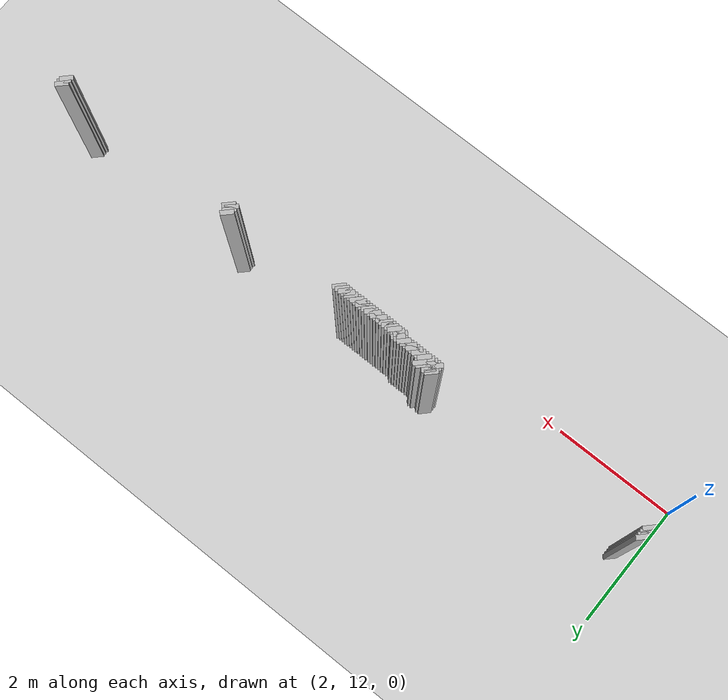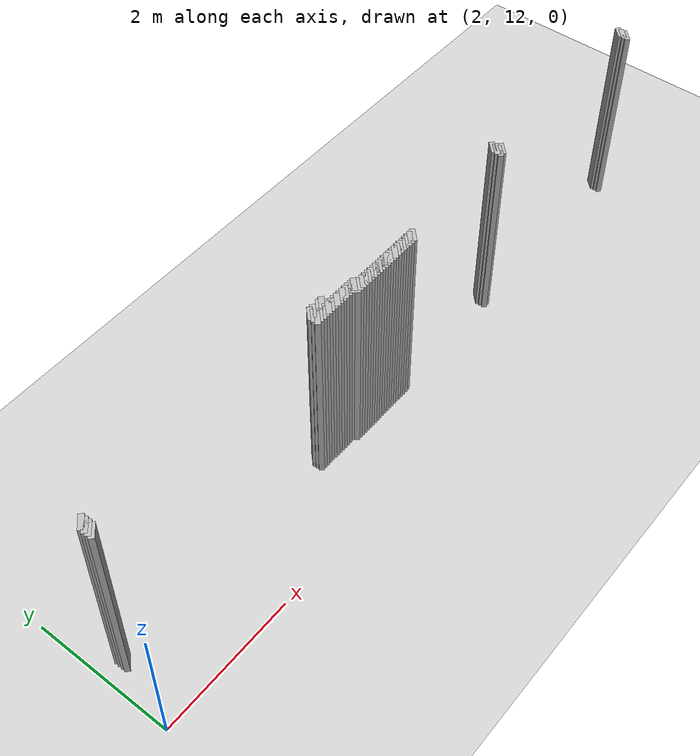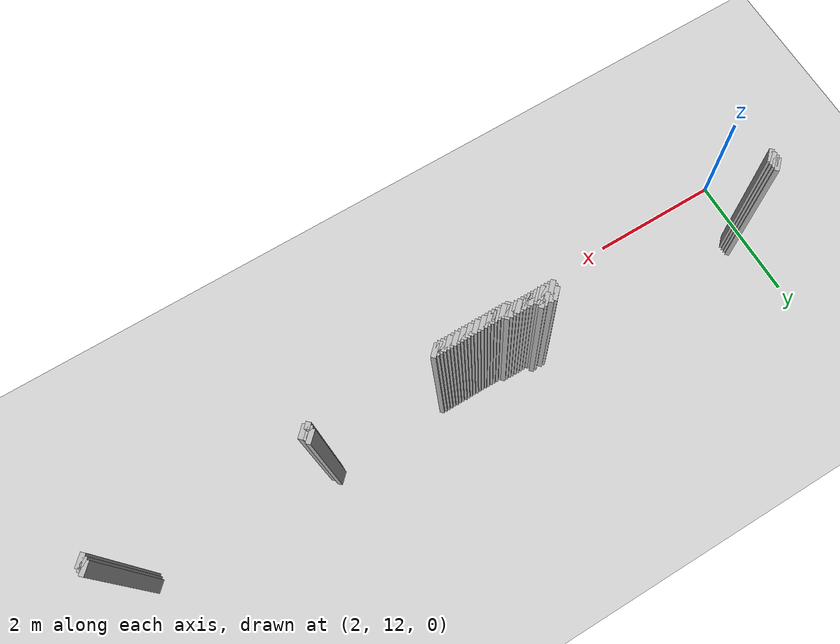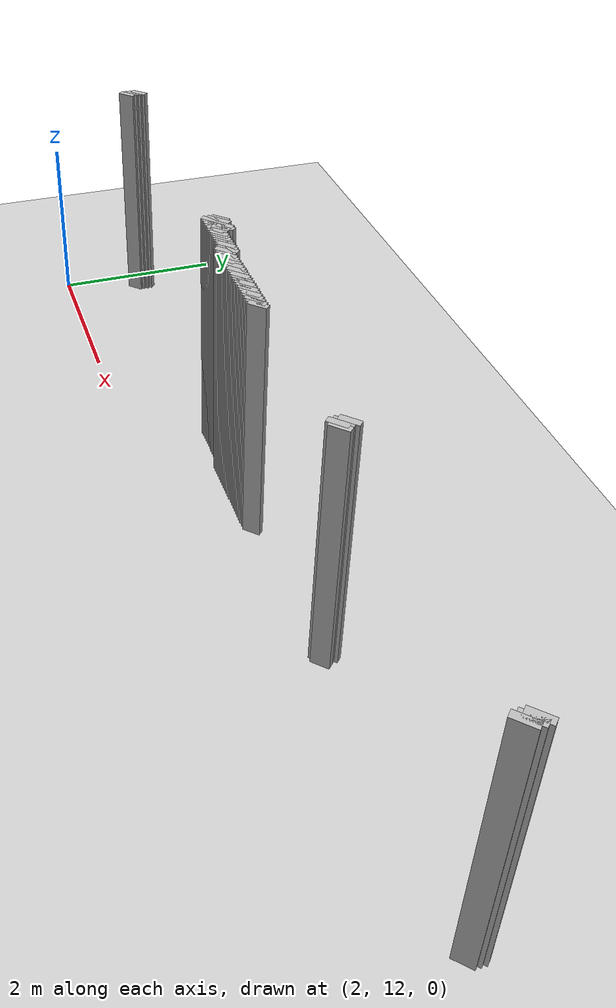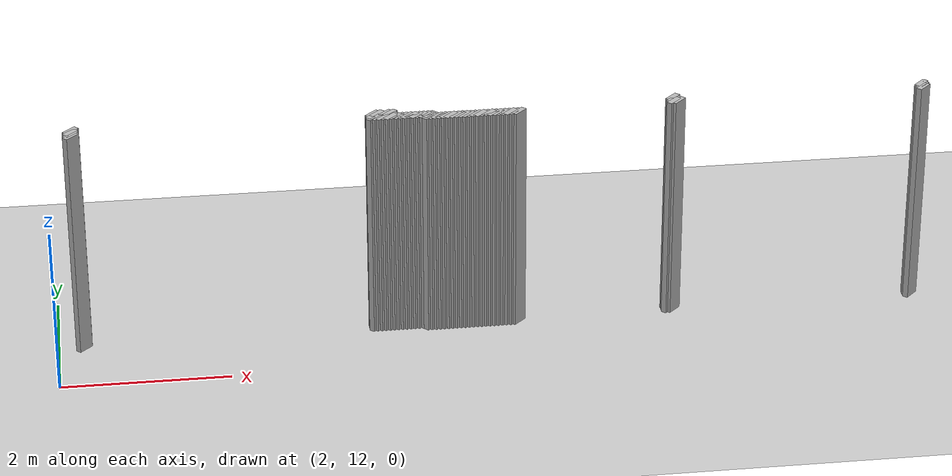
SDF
<sdf version="1.5">
 <world name="default">
  <include><uri>model://ground_plane</uri></include>
  <include><uri>model://sun</uri></include>
  <model name="grey_wall_847">
   <static>1</static>
   <link name="link">
    <pose>2.3000000000000003 13.05  1.4 0 0 -0.7853981633974572</pose>
    <collision name="collision">
     <geometry><box><size>0.07071067811865513 .2  2.8</size></box></geometry>
    </collision>
    <visual name="visual">
     <cast_shadows>0</cast_shadows>
     <geometry><box><size>0.07071067811865513 .2  2.8</size></box></geometry>
    </visual>
   </link>
  </model>
  <model name="grey_wall_848">
   <static>1</static>
   <link name="link">
    <pose>5.800000000000001 13.05  1.4 0 0 -0.7853981633974483</pose>
    <collision name="collision">
     <geometry><box><size>0.07071067811865576 .2  2.8</size></box></geometry>
    </collision>
    <visual name="visual">
     <cast_shadows>0</cast_shadows>
     <geometry><box><size>0.07071067811865576 .2  2.8</size></box></geometry>
    </visual>
   </link>
  </model>
  <model name="grey_wall_849">
   <static>1</static>
   <link name="link">
    <pose>5.8500000000000005 13.05  1.4 0 0 -0.7853981633974483</pose>
    <collision name="collision">
     <geometry><box><size>0.07071067811865576 .2  2.8</size></box></geometry>
    </collision>
    <visual name="visual">
     <cast_shadows>0</cast_shadows>
     <geometry><box><size>0.07071067811865576 .2  2.8</size></box></geometry>
    </visual>
   </link>
  </model>
  <model name="grey_wall_850">
   <static>1</static>
   <link name="link">
    <pose>5.95 13.05  1.4 0 0 -0.7853981633974483</pose>
    <collision name="collision">
     <geometry><box><size>0.07071067811865576 .2  2.8</size></box></geometry>
    </collision>
    <visual name="visual">
     <cast_shadows>0</cast_shadows>
     <geometry><box><size>0.07071067811865576 .2  2.8</size></box></geometry>
    </visual>
   </link>
  </model>
  <model name="grey_wall_851">
   <static>1</static>
   <link name="link">
    <pose>6.0 13.05  1.4 0 0 -0.7853981633974483</pose>
    <collision name="collision">
     <geometry><box><size>0.07071067811865576 .2  2.8</size></box></geometry>
    </collision>
    <visual name="visual">
     <cast_shadows>0</cast_shadows>
     <geometry><box><size>0.07071067811865576 .2  2.8</size></box></geometry>
    </visual>
   </link>
  </model>
  <model name="grey_wall_852">
   <static>1</static>
   <link name="link">
    <pose>9.35 13.05  1.4 0 0 -0.7853981633974483</pose>
    <collision name="collision">
     <geometry><box><size>0.07071067811865576 .2  2.8</size></box></geometry>
    </collision>
    <visual name="visual">
     <cast_shadows>0</cast_shadows>
     <geometry><box><size>0.07071067811865576 .2  2.8</size></box></geometry>
    </visual>
   </link>
  </model>
  <model name="grey_wall_853">
   <static>1</static>
   <link name="link">
    <pose>12.350000000000001 13.05  1.4 0 0 -0.7853981633974483</pose>
    <collision name="collision">
     <geometry><box><size>0.07071067811865576 .2  2.8</size></box></geometry>
    </collision>
    <visual name="visual">
     <cast_shadows>0</cast_shadows>
     <geometry><box><size>0.07071067811865576 .2  2.8</size></box></geometry>
    </visual>
   </link>
  </model>
  <model name="grey_wall_854">
   <static>1</static>
   <link name="link">
    <pose>2.3000000000000003 13.0  1.4 0 0 -0.7853981633974572</pose>
    <collision name="collision">
     <geometry><box><size>0.07071067811865513 .2  2.8</size></box></geometry>
    </collision>
    <visual name="visual">
     <cast_shadows>0</cast_shadows>
     <geometry><box><size>0.07071067811865513 .2  2.8</size></box></geometry>
    </visual>
   </link>
  </model>
  <model name="grey_wall_855">
   <static>1</static>
   <link name="link">
    <pose>5.800000000000001 13.0  1.4 0 0 -0.7853981633974483</pose>
    <collision name="collision">
     <geometry><box><size>0.07071067811865576 .2  2.8</size></box></geometry>
    </collision>
    <visual name="visual">
     <cast_shadows>0</cast_shadows>
     <geometry><box><size>0.07071067811865576 .2  2.8</size></box></geometry>
    </visual>
   </link>
  </model>
  <model name="grey_wall_856">
   <static>1</static>
   <link name="link">
    <pose>6.0 13.0  1.4 0 0 -0.7853981633974483</pose>
    <collision name="collision">
     <geometry><box><size>0.07071067811865576 .2  2.8</size></box></geometry>
    </collision>
    <visual name="visual">
     <cast_shadows>0</cast_shadows>
     <geometry><box><size>0.07071067811865576 .2  2.8</size></box></geometry>
    </visual>
   </link>
  </model>
  <model name="grey_wall_857">
   <static>1</static>
   <link name="link">
    <pose>9.35 13.0  1.4 0 0 -0.7853981633974483</pose>
    <collision name="collision">
     <geometry><box><size>0.07071067811865576 .2  2.8</size></box></geometry>
    </collision>
    <visual name="visual">
     <cast_shadows>0</cast_shadows>
     <geometry><box><size>0.07071067811865576 .2  2.8</size></box></geometry>
    </visual>
   </link>
  </model>
  <model name="grey_wall_858">
   <static>1</static>
   <link name="link">
    <pose>12.350000000000001 13.0  1.4 0 0 -0.7853981633974483</pose>
    <collision name="collision">
     <geometry><box><size>0.07071067811865576 .2  2.8</size></box></geometry>
    </collision>
    <visual name="visual">
     <cast_shadows>0</cast_shadows>
     <geometry><box><size>0.07071067811865576 .2  2.8</size></box></geometry>
    </visual>
   </link>
  </model>
  <model name="grey_wall_859">
   <static>1</static>
   <link name="link">
    <pose>2.3000000000000003 12.950000000000001  1.4 0 0 -0.7853981633974572</pose>
    <collision name="collision">
     <geometry><box><size>0.07071067811865513 .2  2.8</size></box></geometry>
    </collision>
    <visual name="visual">
     <cast_shadows>0</cast_shadows>
     <geometry><box><size>0.07071067811865513 .2  2.8</size></box></geometry>
    </visual>
   </link>
  </model>
  <model name="grey_wall_860">
   <static>1</static>
   <link name="link">
    <pose>5.800000000000001 12.950000000000001  1.4 0 0 -0.7853981633974483</pose>
    <collision name="collision">
     <geometry><box><size>0.07071067811865576 .2  2.8</size></box></geometry>
    </collision>
    <visual name="visual">
     <cast_shadows>0</cast_shadows>
     <geometry><box><size>0.07071067811865576 .2  2.8</size></box></geometry>
    </visual>
   </link>
  </model>
  <model name="grey_wall_861">
   <static>1</static>
   <link name="link">
    <pose>5.8500000000000005 12.950000000000001  1.4 0 0 -0.7853981633974483</pose>
    <collision name="collision">
     <geometry><box><size>0.07071067811865576 .2  2.8</size></box></geometry>
    </collision>
    <visual name="visual">
     <cast_shadows>0</cast_shadows>
     <geometry><box><size>0.07071067811865576 .2  2.8</size></box></geometry>
    </visual>
   </link>
  </model>
  <model name="grey_wall_862">
   <static>1</static>
   <link name="link">
    <pose>5.9 12.950000000000001  1.4 0 0 -0.7853981633974483</pose>
    <collision name="collision">
     <geometry><box><size>0.07071067811865576 .2  2.8</size></box></geometry>
    </collision>
    <visual name="visual">
     <cast_shadows>0</cast_shadows>
     <geometry><box><size>0.07071067811865576 .2  2.8</size></box></geometry>
    </visual>
   </link>
  </model>
  <model name="grey_wall_863">
   <static>1</static>
   <link name="link">
    <pose>5.95 12.950000000000001  1.4 0 0 -0.7853981633974483</pose>
    <collision name="collision">
     <geometry><box><size>0.07071067811865576 .2  2.8</size></box></geometry>
    </collision>
    <visual name="visual">
     <cast_shadows>0</cast_shadows>
     <geometry><box><size>0.07071067811865576 .2  2.8</size></box></geometry>
    </visual>
   </link>
  </model>
  <model name="grey_wall_864">
   <static>1</static>
   <link name="link">
    <pose>6.0 12.950000000000001  1.4 0 0 -0.7853981633974483</pose>
    <collision name="collision">
     <geometry><box><size>0.07071067811865576 .2  2.8</size></box></geometry>
    </collision>
    <visual name="visual">
     <cast_shadows>0</cast_shadows>
     <geometry><box><size>0.07071067811865576 .2  2.8</size></box></geometry>
    </visual>
   </link>
  </model>
  <model name="grey_wall_865">
   <static>1</static>
   <link name="link">
    <pose>6.050000000000001 12.950000000000001  1.4 0 0 -0.7853981633974483</pose>
    <collision name="collision">
     <geometry><box><size>0.07071067811865576 .2  2.8</size></box></geometry>
    </collision>
    <visual name="visual">
     <cast_shadows>0</cast_shadows>
     <geometry><box><size>0.07071067811865576 .2  2.8</size></box></geometry>
    </visual>
   </link>
  </model>
  <model name="grey_wall_866">
   <static>1</static>
   <link name="link">
    <pose>6.1000000000000005 12.950000000000001  1.4 0 0 -0.7853981633974483</pose>
    <collision name="collision">
     <geometry><box><size>0.07071067811865576 .2  2.8</size></box></geometry>
    </collision>
    <visual name="visual">
     <cast_shadows>0</cast_shadows>
     <geometry><box><size>0.07071067811865576 .2  2.8</size></box></geometry>
    </visual>
   </link>
  </model>
  <model name="grey_wall_867">
   <static>1</static>
   <link name="link">
    <pose>6.15 12.950000000000001  1.4 0 0 -0.7853981633974483</pose>
    <collision name="collision">
     <geometry><box><size>0.07071067811865576 .2  2.8</size></box></geometry>
    </collision>
    <visual name="visual">
     <cast_shadows>0</cast_shadows>
     <geometry><box><size>0.07071067811865576 .2  2.8</size></box></geometry>
    </visual>
   </link>
  </model>
  <model name="grey_wall_868">
   <static>1</static>
   <link name="link">
    <pose>6.2 12.950000000000001  1.4 0 0 -0.7853981633974483</pose>
    <collision name="collision">
     <geometry><box><size>0.07071067811865576 .2  2.8</size></box></geometry>
    </collision>
    <visual name="visual">
     <cast_shadows>0</cast_shadows>
     <geometry><box><size>0.07071067811865576 .2  2.8</size></box></geometry>
    </visual>
   </link>
  </model>
  <model name="grey_wall_869">
   <static>1</static>
   <link name="link">
    <pose>6.25 12.950000000000001  1.4 0 0 -0.7853981633974483</pose>
    <collision name="collision">
     <geometry><box><size>0.07071067811865576 .2  2.8</size></box></geometry>
    </collision>
    <visual name="visual">
     <cast_shadows>0</cast_shadows>
     <geometry><box><size>0.07071067811865576 .2  2.8</size></box></geometry>
    </visual>
   </link>
  </model>
  <model name="grey_wall_870">
   <static>1</static>
   <link name="link">
    <pose>6.300000000000001 12.950000000000001  1.4 0 0 -0.7853981633974483</pose>
    <collision name="collision">
     <geometry><box><size>0.07071067811865576 .2  2.8</size></box></geometry>
    </collision>
    <visual name="visual">
     <cast_shadows>0</cast_shadows>
     <geometry><box><size>0.07071067811865576 .2  2.8</size></box></geometry>
    </visual>
   </link>
  </model>
  <model name="grey_wall_871">
   <static>1</static>
   <link name="link">
    <pose>6.3500000000000005 12.950000000000001  1.4 0 0 -0.7853981633974483</pose>
    <collision name="collision">
     <geometry><box><size>0.07071067811865576 .2  2.8</size></box></geometry>
    </collision>
    <visual name="visual">
     <cast_shadows>0</cast_shadows>
     <geometry><box><size>0.07071067811865576 .2  2.8</size></box></geometry>
    </visual>
   </link>
  </model>
  <model name="grey_wall_872">
   <static>1</static>
   <link name="link">
    <pose>6.4 12.950000000000001  1.4 0 0 -0.7853981633974483</pose>
    <collision name="collision">
     <geometry><box><size>0.07071067811865576 .2  2.8</size></box></geometry>
    </collision>
    <visual name="visual">
     <cast_shadows>0</cast_shadows>
     <geometry><box><size>0.07071067811865576 .2  2.8</size></box></geometry>
    </visual>
   </link>
  </model>
  <model name="grey_wall_873">
   <static>1</static>
   <link name="link">
    <pose>6.45 12.950000000000001  1.4 0 0 -0.7853981633974483</pose>
    <collision name="collision">
     <geometry><box><size>0.07071067811865576 .2  2.8</size></box></geometry>
    </collision>
    <visual name="visual">
     <cast_shadows>0</cast_shadows>
     <geometry><box><size>0.07071067811865576 .2  2.8</size></box></geometry>
    </visual>
   </link>
  </model>
  <model name="grey_wall_874">
   <static>1</static>
   <link name="link">
    <pose>9.35 12.950000000000001  1.4 0 0 -0.7853981633974483</pose>
    <collision name="collision">
     <geometry><box><size>0.07071067811865576 .2  2.8</size></box></geometry>
    </collision>
    <visual name="visual">
     <cast_shadows>0</cast_shadows>
     <geometry><box><size>0.07071067811865576 .2  2.8</size></box></geometry>
    </visual>
   </link>
  </model>
  <model name="grey_wall_875">
   <static>1</static>
   <link name="link">
    <pose>9.4 12.950000000000001  1.4 0 0 -0.7853981633974483</pose>
    <collision name="collision">
     <geometry><box><size>0.07071067811865576 .2  2.8</size></box></geometry>
    </collision>
    <visual name="visual">
     <cast_shadows>0</cast_shadows>
     <geometry><box><size>0.07071067811865576 .2  2.8</size></box></geometry>
    </visual>
   </link>
  </model>
  <model name="grey_wall_876">
   <static>1</static>
   <link name="link">
    <pose>12.350000000000001 12.950000000000001  1.4 0 0 -0.7853981633974483</pose>
    <collision name="collision">
     <geometry><box><size>0.07071067811865576 .2  2.8</size></box></geometry>
    </collision>
    <visual name="visual">
     <cast_shadows>0</cast_shadows>
     <geometry><box><size>0.07071067811865576 .2  2.8</size></box></geometry>
    </visual>
   </link>
  </model>
  <model name="grey_wall_877">
   <static>1</static>
   <link name="link">
    <pose>2.3000000000000003 12.9  1.4 0 0 -0.7853981633974572</pose>
    <collision name="collision">
     <geometry><box><size>0.07071067811865513 .2  2.8</size></box></geometry>
    </collision>
    <visual name="visual">
     <cast_shadows>0</cast_shadows>
     <geometry><box><size>0.07071067811865513 .2  2.8</size></box></geometry>
    </visual>
   </link>
  </model>
  <model name="grey_wall_878">
   <static>1</static>
   <link name="link">
    <pose>6.45 12.9  1.4 0 0 -0.7853981633974483</pose>
    <collision name="collision">
     <geometry><box><size>0.07071067811865576 .2  2.8</size></box></geometry>
    </collision>
    <visual name="visual">
     <cast_shadows>0</cast_shadows>
     <geometry><box><size>0.07071067811865576 .2  2.8</size></box></geometry>
    </visual>
   </link>
  </model>
  <model name="grey_wall_879">
   <static>1</static>
   <link name="link">
    <pose>6.5 12.9  1.4 0 0 -0.7853981633974483</pose>
    <collision name="collision">
     <geometry><box><size>0.07071067811865576 .2  2.8</size></box></geometry>
    </collision>
    <visual name="visual">
     <cast_shadows>0</cast_shadows>
     <geometry><box><size>0.07071067811865576 .2  2.8</size></box></geometry>
    </visual>
   </link>
  </model>
  <model name="grey_wall_880">
   <static>1</static>
   <link name="link">
    <pose>6.550000000000001 12.9  1.4 0 0 -0.7853981633974483</pose>
    <collision name="collision">
     <geometry><box><size>0.07071067811865576 .2  2.8</size></box></geometry>
    </collision>
    <visual name="visual">
     <cast_shadows>0</cast_shadows>
     <geometry><box><size>0.07071067811865576 .2  2.8</size></box></geometry>
    </visual>
   </link>
  </model>
  <model name="grey_wall_881">
   <static>1</static>
   <link name="link">
    <pose>6.6000000000000005 12.9  1.4 0 0 -0.7853981633974483</pose>
    <collision name="collision">
     <geometry><box><size>0.07071067811865576 .2  2.8</size></box></geometry>
    </collision>
    <visual name="visual">
     <cast_shadows>0</cast_shadows>
     <geometry><box><size>0.07071067811865576 .2  2.8</size></box></geometry>
    </visual>
   </link>
  </model>
  <model name="grey_wall_882">
   <static>1</static>
   <link name="link">
    <pose>6.65 12.9  1.4 0 0 -0.7853981633974483</pose>
    <collision name="collision">
     <geometry><box><size>0.07071067811865576 .2  2.8</size></box></geometry>
    </collision>
    <visual name="visual">
     <cast_shadows>0</cast_shadows>
     <geometry><box><size>0.07071067811865576 .2  2.8</size></box></geometry>
    </visual>
   </link>
  </model>
  <model name="grey_wall_883">
   <static>1</static>
   <link name="link">
    <pose>6.7 12.9  1.4 0 0 -0.7853981633974483</pose>
    <collision name="collision">
     <geometry><box><size>0.07071067811865576 .2  2.8</size></box></geometry>
    </collision>
    <visual name="visual">
     <cast_shadows>0</cast_shadows>
     <geometry><box><size>0.07071067811865576 .2  2.8</size></box></geometry>
    </visual>
   </link>
  </model>
  <model name="grey_wall_884">
   <static>1</static>
   <link name="link">
    <pose>6.75 12.9  1.4 0 0 -0.7853981633974483</pose>
    <collision name="collision">
     <geometry><box><size>0.07071067811865576 .2  2.8</size></box></geometry>
    </collision>
    <visual name="visual">
     <cast_shadows>0</cast_shadows>
     <geometry><box><size>0.07071067811865576 .2  2.8</size></box></geometry>
    </visual>
   </link>
  </model>
  <model name="grey_wall_885">
   <static>1</static>
   <link name="link">
    <pose>6.800000000000001 12.9  1.4 0 0 -0.7853981633974483</pose>
    <collision name="collision">
     <geometry><box><size>0.07071067811865576 .2  2.8</size></box></geometry>
    </collision>
    <visual name="visual">
     <cast_shadows>0</cast_shadows>
     <geometry><box><size>0.07071067811865576 .2  2.8</size></box></geometry>
    </visual>
   </link>
  </model>
  <model name="grey_wall_886">
   <static>1</static>
   <link name="link">
    <pose>6.8500000000000005 12.9  1.4 0 0 -0.7853981633974483</pose>
    <collision name="collision">
     <geometry><box><size>0.07071067811865576 .2  2.8</size></box></geometry>
    </collision>
    <visual name="visual">
     <cast_shadows>0</cast_shadows>
     <geometry><box><size>0.07071067811865576 .2  2.8</size></box></geometry>
    </visual>
   </link>
  </model>
  <model name="grey_wall_887">
   <static>1</static>
   <link name="link">
    <pose>6.9 12.9  1.4 0 0 -0.7853981633974483</pose>
    <collision name="collision">
     <geometry><box><size>0.07071067811865576 .2  2.8</size></box></geometry>
    </collision>
    <visual name="visual">
     <cast_shadows>0</cast_shadows>
     <geometry><box><size>0.07071067811865576 .2  2.8</size></box></geometry>
    </visual>
   </link>
  </model>
  <model name="grey_wall_888">
   <static>1</static>
   <link name="link">
    <pose>6.95 12.9  1.4 0 0 -0.7853981633974483</pose>
    <collision name="collision">
     <geometry><box><size>0.07071067811865576 .2  2.8</size></box></geometry>
    </collision>
    <visual name="visual">
     <cast_shadows>0</cast_shadows>
     <geometry><box><size>0.07071067811865576 .2  2.8</size></box></geometry>
    </visual>
   </link>
  </model>
  <model name="grey_wall_889">
   <static>1</static>
   <link name="link">
    <pose>7.0 12.9  1.4 0 0 -0.7853981633974483</pose>
    <collision name="collision">
     <geometry><box><size>0.07071067811865576 .2  2.8</size></box></geometry>
    </collision>
    <visual name="visual">
     <cast_shadows>0</cast_shadows>
     <geometry><box><size>0.07071067811865576 .2  2.8</size></box></geometry>
    </visual>
   </link>
  </model>
  <model name="grey_wall_890">
   <static>1</static>
   <link name="link">
    <pose>7.050000000000001 12.9  1.4 0 0 -0.7853981633974483</pose>
    <collision name="collision">
     <geometry><box><size>0.07071067811865576 .2  2.8</size></box></geometry>
    </collision>
    <visual name="visual">
     <cast_shadows>0</cast_shadows>
     <geometry><box><size>0.07071067811865576 .2  2.8</size></box></geometry>
    </visual>
   </link>
  </model>
  <model name="grey_wall_891">
   <static>1</static>
   <link name="link">
    <pose>7.1000000000000005 12.9  1.4 0 0 -0.7853981633974483</pose>
    <collision name="collision">
     <geometry><box><size>0.07071067811865576 .2  2.8</size></box></geometry>
    </collision>
    <visual name="visual">
     <cast_shadows>0</cast_shadows>
     <geometry><box><size>0.07071067811865576 .2  2.8</size></box></geometry>
    </visual>
   </link>
  </model>
  <model name="grey_wall_892">
   <static>1</static>
   <link name="link">
    <pose>7.15 12.9  1.4 0 0 -0.7853981633974483</pose>
    <collision name="collision">
     <geometry><box><size>0.07071067811865576 .2  2.8</size></box></geometry>
    </collision>
    <visual name="visual">
     <cast_shadows>0</cast_shadows>
     <geometry><box><size>0.07071067811865576 .2  2.8</size></box></geometry>
    </visual>
   </link>
  </model>
  <model name="grey_wall_893">
   <static>1</static>
   <link name="link">
    <pose>7.2 12.9  1.4 0 0 -0.7853981633974483</pose>
    <collision name="collision">
     <geometry><box><size>0.07071067811865576 .2  2.8</size></box></geometry>
    </collision>
    <visual name="visual">
     <cast_shadows>0</cast_shadows>
     <geometry><box><size>0.07071067811865576 .2  2.8</size></box></geometry>
    </visual>
   </link>
  </model>
  <model name="grey_wall_894">
   <static>1</static>
   <link name="link">
    <pose>7.25 12.9  1.4 0 0 -0.7853981633974483</pose>
    <collision name="collision">
     <geometry><box><size>0.07071067811865576 .2  2.8</size></box></geometry>
    </collision>
    <visual name="visual">
     <cast_shadows>0</cast_shadows>
     <geometry><box><size>0.07071067811865576 .2  2.8</size></box></geometry>
    </visual>
   </link>
  </model>
  <model name="grey_wall_895">
   <static>1</static>
   <link name="link">
    <pose>7.300000000000001 12.9  1.4 0 0 -0.7853981633974483</pose>
    <collision name="collision">
     <geometry><box><size>0.07071067811865576 .2  2.8</size></box></geometry>
    </collision>
    <visual name="visual">
     <cast_shadows>0</cast_shadows>
     <geometry><box><size>0.07071067811865576 .2  2.8</size></box></geometry>
    </visual>
   </link>
  </model>
  <model name="grey_wall_896">
   <static>1</static>
   <link name="link">
    <pose>7.3500000000000005 12.9  1.4 0 0 -0.7853981633974483</pose>
    <collision name="collision">
     <geometry><box><size>0.07071067811865576 .2  2.8</size></box></geometry>
    </collision>
    <visual name="visual">
     <cast_shadows>0</cast_shadows>
     <geometry><box><size>0.07071067811865576 .2  2.8</size></box></geometry>
    </visual>
   </link>
  </model>
  <model name="grey_wall_897">
   <static>1</static>
   <link name="link">
    <pose>7.4 12.9  1.4 0 0 -0.7853981633974483</pose>
    <collision name="collision">
     <geometry><box><size>0.07071067811865576 .2  2.8</size></box></geometry>
    </collision>
    <visual name="visual">
     <cast_shadows>0</cast_shadows>
     <geometry><box><size>0.07071067811865576 .2  2.8</size></box></geometry>
    </visual>
   </link>
  </model>
  <model name="grey_wall_898">
   <static>1</static>
   <link name="link">
    <pose>7.45 12.9  1.4 0 0 -0.7853981633974483</pose>
    <collision name="collision">
     <geometry><box><size>0.07071067811865576 .2  2.8</size></box></geometry>
    </collision>
    <visual name="visual">
     <cast_shadows>0</cast_shadows>
     <geometry><box><size>0.07071067811865576 .2  2.8</size></box></geometry>
    </visual>
   </link>
  </model>
  <model name="grey_wall_899">
   <static>1</static>
   <link name="link">
    <pose>7.5 12.9  1.4 0 0 -0.7853981633974483</pose>
    <collision name="collision">
     <geometry><box><size>0.07071067811865576 .2  2.8</size></box></geometry>
    </collision>
    <visual name="visual">
     <cast_shadows>0</cast_shadows>
     <geometry><box><size>0.07071067811865576 .2  2.8</size></box></geometry>
    </visual>
   </link>
  </model>
 </world>
</sdf>
